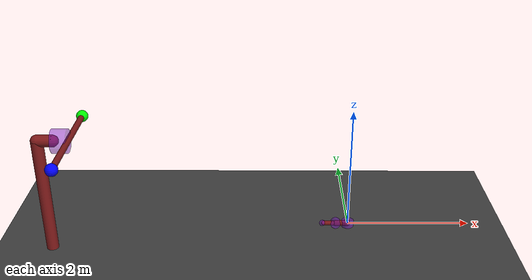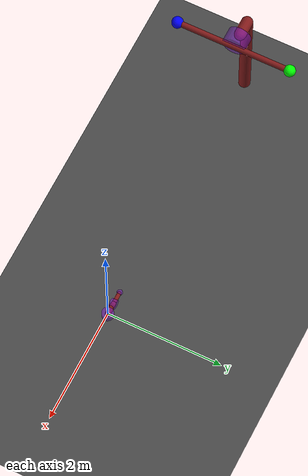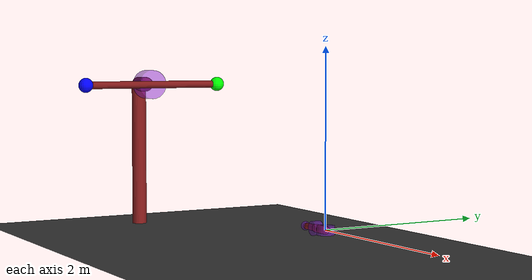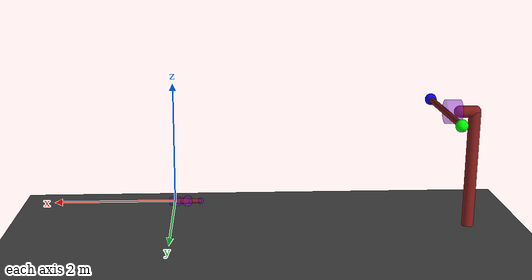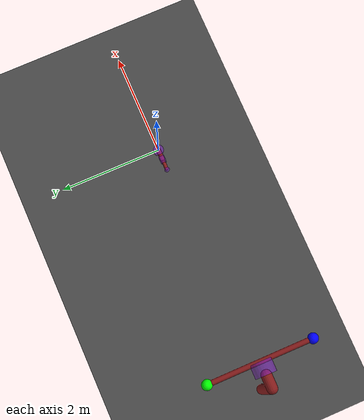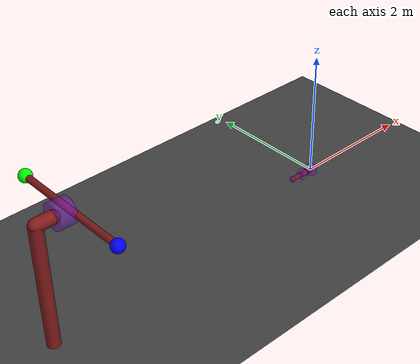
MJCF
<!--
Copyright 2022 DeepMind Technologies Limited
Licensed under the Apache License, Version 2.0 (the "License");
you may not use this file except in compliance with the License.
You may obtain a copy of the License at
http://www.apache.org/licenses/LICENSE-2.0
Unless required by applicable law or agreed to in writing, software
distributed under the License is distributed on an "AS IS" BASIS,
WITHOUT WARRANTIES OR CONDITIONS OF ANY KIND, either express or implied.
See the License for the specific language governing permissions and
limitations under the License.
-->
<mujoco model="Fixation">
  <option timestep="0.005"/>

  <size njmax="50" nconmax="10" nstack="2000"/>

  <visual>
    <global  offwidth="1280" offheight="720"/>
    <rgba haze=".3 .3 .3 1"/>
  </visual>

  <default>
    <joint type="hinge" pos="0 0 0" axis="0 0 1" damping="0.1"/>
    <motor ctrllimited="true" ctrlrange="-6 6"/>
  </default>

  <asset>
    <texture type="skybox" builtin="gradient" rgb1="0.6 0.6 0.6" rgb2="0 0 0" width="512" height="512"/>

    <texture name="texplane" type="2d" builtin="checker" rgb1=".25 .25 .25" rgb2=".3 .3 .3" width="512" height="512" mark="cross" markrgb=".8 .8 .8"/>

    <material name="matplane" reflectance="0.3" texture="texplane" texrepeat="1 1" texuniform="true"/>
  </asset>

  <worldbody>
    <geom name="floor" pos="0 0 -0.5" size="0 0 1" type="plane" material="matplane"/>

    <light directional="true" diffuse=".8 .8 .8" specular=".2 .2 .2" pos="0 0 5" dir="0 0 -1"/>

    <body pos="0 0 0" quat="0 0 0 1">
      <geom name="upper arm" type="capsule" size="0.045" fromto="0 0 0  0.2 0 0" rgba=".5 .1 .1 1"/>
      <joint name="shoulder"/>
      <geom name="shoulder" type="cylinder" pos="0 0 0" size=".1 .05" rgba=".5 .1 .8 .5" mass="0" group="1"/>

      <body pos="0.2 0 0" quat = "0.707 0.707 0 0">
        <geom name="forearm" type="capsule" size="0.035" fromto="-0.2 0 0  0.2 0 0" rgba=".5 .1 .1 1"/>
        <joint name="elbow"/>
        <geom name="elbow" type="cylinder" pos="0 0 0" size=".08 .05" rgba=".5 .1 .8 .5" mass="0" group="1"/>

        <body pos="0.22 0 0" quat="0.707 0 -0.707 0" name="fixater">
          <geom type="sphere" size="0.05" pos="0 0 0" rgba=".5 .1 .8 .5" mass="0"/>
          <camera name="fixater" mode="fixed" fovy="45"/>
        </body>
      </body>
    </body>

    <body pos="-5 0 -0.5" quat="0 0 0 1">
      <geom name="windmillbase" type="cylinder" size=".1" fromto="0 0 0 0 0 2" rgba=".5 .1 .1 1"/>

      <body pos="0 0 2" quat="0 0 0 1">
        <geom name="windmillnacel" type="capsule" size="0.1" fromto="0 0 0 0.25 0 0" rgba=".5 .1 .1 1"/>

        <body pos="0.25 0 0">
          <joint name="windmillrotor" pos="0 0 0" axis="1 0 0" damping="0.1"/>
          <geom name="windmillrotor" type="cylinder" size=".2" fromto="0 0 0 0.25 0 0" rgba=".5 .1 .8 .5" mass="0" group="1"/>

          <body pos="0.25 0 0">
            <geom name="windmillblade" type="capsule" size="0.05" fromto="0 -1 0 0 1 0" rgba=".5 .1 .1 1"/>

            <body pos="0 -1 0">
              <geom name="windmilltarget1" type="sphere" size="0.1" pos="0 0 0" rgba="0 0 1 1"/>
            </body>
            <body pos="0  1 0">
              <geom name="windmilltarget2" type="sphere" size="0.1" pos="0 0 0" rgba="0 1 0 1"/>
            </body>
          </body>
        </body>
      </body>
    </body>
  </worldbody>

  <actuator>
    <velocity name="shoulderv" joint="shoulder" kv="2"/>
    <velocity name="elbowv" joint="elbow"/>
  </actuator>
</mujoco>
